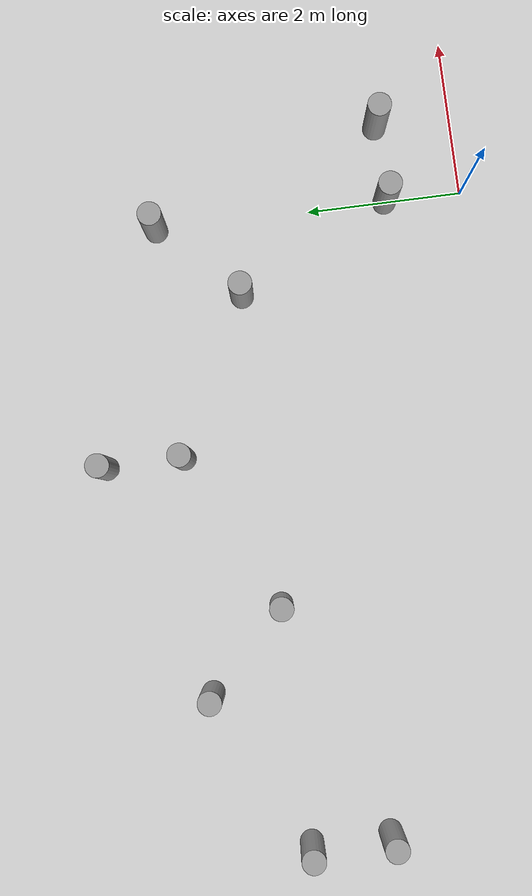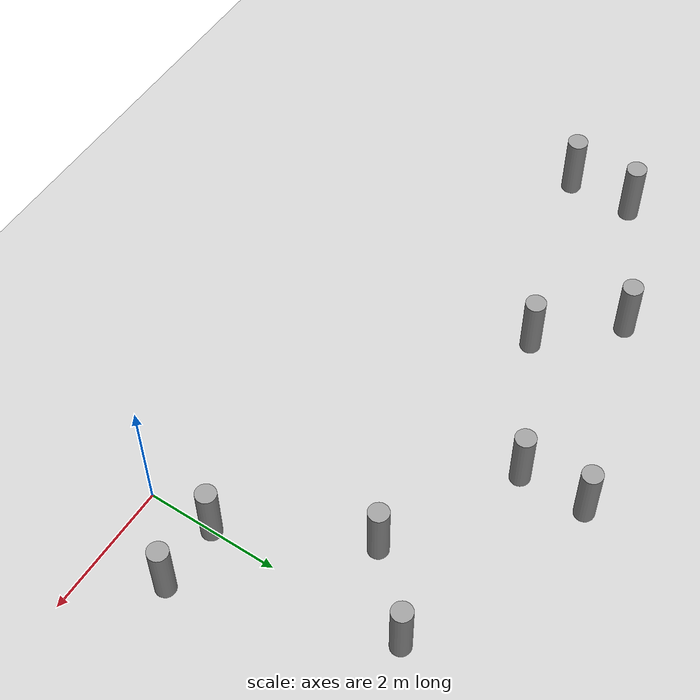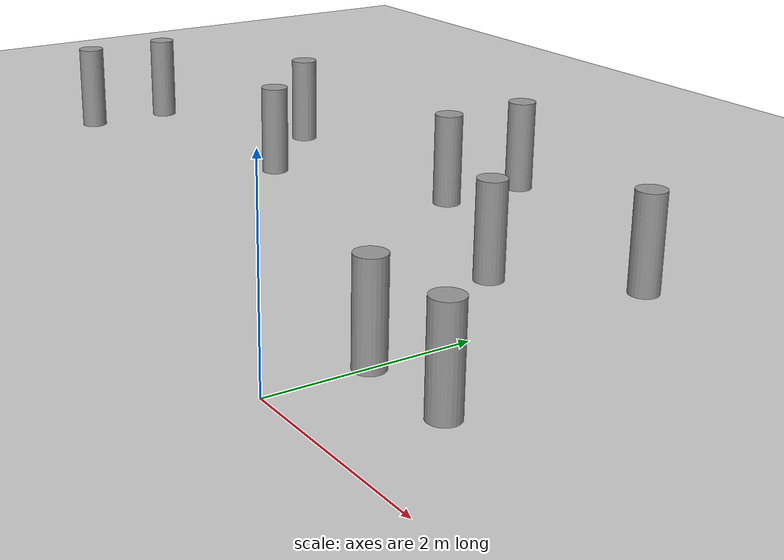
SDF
<sdf version="1.7">
 <world name="default">
  <light name="sun" type="directional">
   <pose>0 0 10 0 -0 0</pose>
   <diffuse>0.8 0.8 0.8 1</diffuse>
   <specular>0.2 0.2 0.2 1</specular>
   <attenuation>
    <range>1000</range>
    <constant>0.9</constant>
    <linear>0.01</linear>
    <quadratic>0.001</quadratic>
   </attenuation>
   <direction>-0.5 0.1 -0.9</direction>
   <spot><inner_angle>0</inner_angle><outer_angle>0</outer_angle><falloff>0</falloff></spot>
  </light>
  <model name="ground_plane">
   <static>1</static>
   <link name="link">
    <collision name="collision">
     <geometry><plane><normal>0 0 1</normal><size>100 100</size></plane></geometry>
     <surface>
      <contact><collide_bitmask>65535</collide_bitmask></contact>
      <friction><ode><mu>100</mu><mu2>50</mu2></ode></friction>
     </surface>
    </collision>
    <visual name="visual">
     <cast_shadows>0</cast_shadows>
     <geometry><plane><normal>0 0 1</normal><size>100 100</size></plane></geometry>
     <material>
      <script><uri>file://media/materials/scripts/gazebo.material</uri><name>Gazebo/Grey</name></script>
     </material>
    </visual>
   </link>
  </model>
  <gravity>0 0 -9.8</gravity>
  <magnetic_field>6e-06 2.3e-05 -4.2e-05</magnetic_field>
  <atmosphere type="adiabatic"/>
  <physics type="ode">
   <max_step_size>0.001</max_step_size>
   <real_time_factor>1</real_time_factor>
   <real_time_update_rate>1000</real_time_update_rate>
  </physics>
  <scene><ambient>0.4 0.4 0.4 1</ambient><background>0.7 0.7 0.7 1</background><shadows>1</shadows></scene>
  <spherical_coordinates>
   <surface_model>EARTH_WGS84</surface_model>
   <latitude_deg>0</latitude_deg>
   <longitude_deg>0</longitude_deg>
   <elevation>0</elevation>
   <heading_deg>0</heading_deg>
  </spherical_coordinates>
  <model name="custom.world">
   <link name="link_0">
    <inertial>
     <mass>1</mass>
     <inertia><ixx>0.145833</ixx><ixy>0</ixy><ixz>0</ixz><iyy>0.145833</iyy><iyz>0</iyz><izz>0.125</izz></inertia>
    </inertial>
    <pose>3.3 -2 0 0 -0 0</pose>
    <visual name="visual">
     <geometry><cylinder><radius>0.15</radius><length>1</length></cylinder></geometry>
     <material>
      <lighting>1</lighting>
      <script><uri>file://media/materials/scripts/gazebo.material</uri><name>Gazebo/Grey</name></script>
      <shader type="pixel"><normal_map>__default__</normal_map></shader>
      <ambient>0.3 0.3 0.3 1</ambient>
      <diffuse>0.7 0.7 0.7 1</diffuse>
      <specular>0.01 0.01 0.01 1</specular>
      <emissive>0 0 0 1</emissive>
     </material>
    </visual>
    <collision name="collision">
     <geometry><cylinder><radius>0.5</radius><length>1</length></cylinder></geometry>
     <surface>
      <friction>
       <ode><mu>1</mu><mu2>1</mu2><fdir1>0 0 0</fdir1><slip1>0</slip1><slip2>0</slip2></ode>
       <torsional>
        <coefficient>1</coefficient>
        <patch_radius>0</patch_radius>
        <surface_radius>0</surface_radius>
        <use_patch_radius>1</use_patch_radius>
        <ode><slip>0</slip></ode>
       </torsional>
      </friction>
      <bounce><restitution_coefficient>0</restitution_coefficient><threshold>1e+06</threshold></bounce>
      <contact>
       <collide_without_contact>0</collide_without_contact>
       <collide_without_contact_bitmask>1</collide_without_contact_bitmask>
       <collide_bitmask>1</collide_bitmask>
       <ode>
        <soft_cfm>0</soft_cfm>
        <soft_erp>0.2</soft_erp>
        <kp>1e+13</kp>
        <kd>1</kd>
        <max_vel>0.01</max_vel>
        <min_depth>0</min_depth>
       </ode>
       <bullet>
        <split_impulse>1</split_impulse>
        <split_impulse_penetration_threshold>-0.01</split_impulse_penetration_threshold>
        <soft_cfm>0</soft_cfm>
        <soft_erp>0.2</soft_erp>
        <kp>1e+13</kp>
        <kd>1</kd>
       </bullet>
      </contact>
     </surface>
    </collision>
   </link>
   <link name="link_1">
    <inertial>
     <mass>1</mass>
     <inertia><ixx>0.145833</ixx><ixy>0</ixy><ixz>0</ixz><iyy>0.145833</iyy><iyz>0</iyz><izz>0.125</izz></inertia>
    </inertial>
    <pose>4.3 -2 0 0 -0 0</pose>
    <visual name="visual">
     <geometry><cylinder><radius>0.15</radius><length>1</length></cylinder></geometry>
     <material>
      <lighting>1</lighting>
      <script><uri>file://media/materials/scripts/gazebo.material</uri><name>Gazebo/Grey</name></script>
      <shader type="pixel"><normal_map>__default__</normal_map></shader>
      <ambient>0.3 0.3 0.3 1</ambient>
      <diffuse>0.7 0.7 0.7 1</diffuse>
      <specular>0.01 0.01 0.01 1</specular>
      <emissive>0 0 0 1</emissive>
     </material>
    </visual>
    <collision name="collision">
     <geometry><cylinder><radius>0.5</radius><length>1</length></cylinder></geometry>
     <surface>
      <friction>
       <ode><mu>1</mu><mu2>1</mu2><fdir1>0 0 0</fdir1><slip1>0</slip1><slip2>0</slip2></ode>
       <torsional>
        <coefficient>1</coefficient>
        <patch_radius>0</patch_radius>
        <surface_radius>0</surface_radius>
        <use_patch_radius>1</use_patch_radius>
        <ode><slip>0</slip></ode>
       </torsional>
      </friction>
      <bounce><restitution_coefficient>0</restitution_coefficient><threshold>1e+06</threshold></bounce>
      <contact>
       <collide_without_contact>0</collide_without_contact>
       <collide_without_contact_bitmask>1</collide_without_contact_bitmask>
       <collide_bitmask>1</collide_bitmask>
       <ode>
        <soft_cfm>0</soft_cfm>
        <soft_erp>0.2</soft_erp>
        <kp>1e+13</kp>
        <kd>1</kd>
        <max_vel>0.01</max_vel>
        <min_depth>0</min_depth>
       </ode>
       <bullet>
        <split_impulse>1</split_impulse>
        <split_impulse_penetration_threshold>-0.01</split_impulse_penetration_threshold>
        <soft_cfm>0</soft_cfm>
        <soft_erp>0.2</soft_erp>
        <kp>1e+13</kp>
        <kd>1</kd>
       </bullet>
      </contact>
     </surface>
    </collision>
   </link>
   <link name="link_2">
    <inertial>
     <mass>1</mass>
     <inertia><ixx>0.145833</ixx><ixy>0</ixy><ixz>0</ixz><iyy>0.145833</iyy><iyz>0</iyz><izz>0.125</izz></inertia>
    </inertial>
    <pose>3.3 1 0 0 -0 0</pose>
    <visual name="visual">
     <geometry><cylinder><radius>0.15</radius><length>1</length></cylinder></geometry>
     <material>
      <lighting>1</lighting>
      <script><uri>file://media/materials/scripts/gazebo.material</uri><name>Gazebo/Grey</name></script>
      <shader type="pixel"><normal_map>__default__</normal_map></shader>
      <ambient>0.3 0.3 0.3 1</ambient>
      <diffuse>0.7 0.7 0.7 1</diffuse>
      <specular>0.01 0.01 0.01 1</specular>
      <emissive>0 0 0 1</emissive>
     </material>
    </visual>
    <collision name="collision">
     <geometry><cylinder><radius>0.5</radius><length>1</length></cylinder></geometry>
     <surface>
      <friction>
       <ode><mu>1</mu><mu2>1</mu2><fdir1>0 0 0</fdir1><slip1>0</slip1><slip2>0</slip2></ode>
       <torsional>
        <coefficient>1</coefficient>
        <patch_radius>0</patch_radius>
        <surface_radius>0</surface_radius>
        <use_patch_radius>1</use_patch_radius>
        <ode><slip>0</slip></ode>
       </torsional>
      </friction>
      <bounce><restitution_coefficient>0</restitution_coefficient><threshold>1e+06</threshold></bounce>
      <contact>
       <collide_without_contact>0</collide_without_contact>
       <collide_without_contact_bitmask>1</collide_without_contact_bitmask>
       <collide_bitmask>1</collide_bitmask>
       <ode>
        <soft_cfm>0</soft_cfm>
        <soft_erp>0.2</soft_erp>
        <kp>1e+13</kp>
        <kd>1</kd>
        <max_vel>0.01</max_vel>
        <min_depth>0</min_depth>
       </ode>
       <bullet>
        <split_impulse>1</split_impulse>
        <split_impulse_penetration_threshold>-0.01</split_impulse_penetration_threshold>
        <soft_cfm>0</soft_cfm>
        <soft_erp>0.2</soft_erp>
        <kp>1e+13</kp>
        <kd>1</kd>
       </bullet>
      </contact>
     </surface>
    </collision>
   </link>
   <link name="link_3">
    <inertial>
     <mass>1</mass>
     <inertia><ixx>0.145833</ixx><ixy>0</ixy><ixz>0</ixz><iyy>0.145833</iyy><iyz>0</iyz><izz>0.125</izz></inertia>
    </inertial>
    <pose>2.3 0 0 0 -0 0</pose>
    <visual name="visual">
     <geometry><cylinder><radius>0.15</radius><length>1</length></cylinder></geometry>
     <material>
      <lighting>1</lighting>
      <script><uri>file://media/materials/scripts/gazebo.material</uri><name>Gazebo/Grey</name></script>
      <shader type="pixel"><normal_map>__default__</normal_map></shader>
      <ambient>0.3 0.3 0.3 1</ambient>
      <diffuse>0.7 0.7 0.7 1</diffuse>
      <specular>0.01 0.01 0.01 1</specular>
      <emissive>0 0 0 1</emissive>
     </material>
    </visual>
    <collision name="collision">
     <geometry><cylinder><radius>0.5</radius><length>1</length></cylinder></geometry>
     <surface>
      <friction>
       <ode><mu>1</mu><mu2>1</mu2><fdir1>0 0 0</fdir1><slip1>0</slip1><slip2>0</slip2></ode>
       <torsional>
        <coefficient>1</coefficient>
        <patch_radius>0</patch_radius>
        <surface_radius>0</surface_radius>
        <use_patch_radius>1</use_patch_radius>
        <ode><slip>0</slip></ode>
       </torsional>
      </friction>
      <bounce><restitution_coefficient>0</restitution_coefficient><threshold>1e+06</threshold></bounce>
      <contact>
       <collide_without_contact>0</collide_without_contact>
       <collide_without_contact_bitmask>1</collide_without_contact_bitmask>
       <collide_bitmask>1</collide_bitmask>
       <ode>
        <soft_cfm>0</soft_cfm>
        <soft_erp>0.2</soft_erp>
        <kp>1e+13</kp>
        <kd>1</kd>
        <max_vel>0.01</max_vel>
        <min_depth>0</min_depth>
       </ode>
       <bullet>
        <split_impulse>1</split_impulse>
        <split_impulse_penetration_threshold>-0.01</split_impulse_penetration_threshold>
        <soft_cfm>0</soft_cfm>
        <soft_erp>0.2</soft_erp>
        <kp>1e+13</kp>
        <kd>1</kd>
       </bullet>
      </contact>
     </surface>
    </collision>
   </link>
   <link name="link_4">
    <inertial>
     <mass>1</mass>
     <inertia><ixx>0.145833</ixx><ixy>0</ixy><ixz>0</ixz><iyy>0.145833</iyy><iyz>0</iyz><izz>0.125</izz></inertia>
    </inertial>
    <pose>0.3 1 0 0 -0 0</pose>
    <visual name="visual">
     <geometry><cylinder><radius>0.15</radius><length>1</length></cylinder></geometry>
     <material>
      <lighting>1</lighting>
      <script><uri>file://media/materials/scripts/gazebo.material</uri><name>Gazebo/Grey</name></script>
      <shader type="pixel"><normal_map>__default__</normal_map></shader>
      <ambient>0.3 0.3 0.3 1</ambient>
      <diffuse>0.7 0.7 0.7 1</diffuse>
      <specular>0.01 0.01 0.01 1</specular>
      <emissive>0 0 0 1</emissive>
     </material>
    </visual>
    <collision name="collision">
     <geometry><cylinder><radius>0.5</radius><length>1</length></cylinder></geometry>
     <surface>
      <friction>
       <ode><mu>1</mu><mu2>1</mu2><fdir1>0 0 0</fdir1><slip1>0</slip1><slip2>0</slip2></ode>
       <torsional>
        <coefficient>1</coefficient>
        <patch_radius>0</patch_radius>
        <surface_radius>0</surface_radius>
        <use_patch_radius>1</use_patch_radius>
        <ode><slip>0</slip></ode>
       </torsional>
      </friction>
      <bounce><restitution_coefficient>0</restitution_coefficient><threshold>1e+06</threshold></bounce>
      <contact>
       <collide_without_contact>0</collide_without_contact>
       <collide_without_contact_bitmask>1</collide_without_contact_bitmask>
       <collide_bitmask>1</collide_bitmask>
       <ode>
        <soft_cfm>0</soft_cfm>
        <soft_erp>0.2</soft_erp>
        <kp>1e+13</kp>
        <kd>1</kd>
        <max_vel>0.01</max_vel>
        <min_depth>0</min_depth>
       </ode>
       <bullet>
        <split_impulse>1</split_impulse>
        <split_impulse_penetration_threshold>-0.01</split_impulse_penetration_threshold>
        <soft_cfm>0</soft_cfm>
        <soft_erp>0.2</soft_erp>
        <kp>1e+13</kp>
        <kd>1</kd>
       </bullet>
      </contact>
     </surface>
    </collision>
   </link>
   <link name="link_5">
    <inertial>
     <mass>1</mass>
     <inertia><ixx>0.145833</ixx><ixy>0</ixy><ixz>0</ixz><iyy>0.145833</iyy><iyz>0</iyz><izz>0.125</izz></inertia>
    </inertial>
    <pose>0.3 2 0 0 -0 0</pose>
    <visual name="visual">
     <geometry><cylinder><radius>0.15</radius><length>1</length></cylinder></geometry>
     <material>
      <lighting>1</lighting>
      <script><uri>file://media/materials/scripts/gazebo.material</uri><name>Gazebo/Grey</name></script>
      <shader type="pixel"><normal_map>__default__</normal_map></shader>
      <ambient>0.3 0.3 0.3 1</ambient>
      <diffuse>0.7 0.7 0.7 1</diffuse>
      <specular>0.01 0.01 0.01 1</specular>
      <emissive>0 0 0 1</emissive>
     </material>
    </visual>
    <collision name="collision">
     <geometry><cylinder><radius>0.5</radius><length>1</length></cylinder></geometry>
     <surface>
      <friction>
       <ode><mu>1</mu><mu2>1</mu2><fdir1>0 0 0</fdir1><slip1>0</slip1><slip2>0</slip2></ode>
       <torsional>
        <coefficient>1</coefficient>
        <patch_radius>0</patch_radius>
        <surface_radius>0</surface_radius>
        <use_patch_radius>1</use_patch_radius>
        <ode><slip>0</slip></ode>
       </torsional>
      </friction>
      <bounce><restitution_coefficient>0</restitution_coefficient><threshold>1e+06</threshold></bounce>
      <contact>
       <collide_without_contact>0</collide_without_contact>
       <collide_without_contact_bitmask>1</collide_without_contact_bitmask>
       <collide_bitmask>1</collide_bitmask>
       <ode>
        <soft_cfm>0</soft_cfm>
        <soft_erp>0.2</soft_erp>
        <kp>1e+13</kp>
        <kd>1</kd>
        <max_vel>0.01</max_vel>
        <min_depth>0</min_depth>
       </ode>
       <bullet>
        <split_impulse>1</split_impulse>
        <split_impulse_penetration_threshold>-0.01</split_impulse_penetration_threshold>
        <soft_cfm>0</soft_cfm>
        <soft_erp>0.2</soft_erp>
        <kp>1e+13</kp>
        <kd>1</kd>
       </bullet>
      </contact>
     </surface>
    </collision>
   </link>
   <link name="link_6">
    <inertial>
     <mass>1</mass>
     <inertia><ixx>0.145833</ixx><ixy>0</ixy><ixz>0</ixz><iyy>0.145833</iyy><iyz>0</iyz><izz>0.125</izz></inertia>
    </inertial>
    <pose>-1.7 0 0 0 -0 0</pose>
    <visual name="visual">
     <geometry><cylinder><radius>0.15</radius><length>1</length></cylinder></geometry>
     <material>
      <lighting>1</lighting>
      <script><uri>file://media/materials/scripts/gazebo.material</uri><name>Gazebo/Grey</name></script>
      <shader type="pixel"><normal_map>__default__</normal_map></shader>
      <ambient>0.3 0.3 0.3 1</ambient>
      <diffuse>0.7 0.7 0.7 1</diffuse>
      <specular>0.01 0.01 0.01 1</specular>
      <emissive>0 0 0 1</emissive>
     </material>
    </visual>
    <collision name="collision">
     <geometry><cylinder><radius>0.5</radius><length>1</length></cylinder></geometry>
     <surface>
      <friction>
       <ode><mu>1</mu><mu2>1</mu2><fdir1>0 0 0</fdir1><slip1>0</slip1><slip2>0</slip2></ode>
       <torsional>
        <coefficient>1</coefficient>
        <patch_radius>0</patch_radius>
        <surface_radius>0</surface_radius>
        <use_patch_radius>1</use_patch_radius>
        <ode><slip>0</slip></ode>
       </torsional>
      </friction>
      <bounce><restitution_coefficient>0</restitution_coefficient><threshold>1e+06</threshold></bounce>
      <contact>
       <collide_without_contact>0</collide_without_contact>
       <collide_without_contact_bitmask>1</collide_without_contact_bitmask>
       <collide_bitmask>1</collide_bitmask>
       <ode>
        <soft_cfm>0</soft_cfm>
        <soft_erp>0.2</soft_erp>
        <kp>1e+13</kp>
        <kd>1</kd>
        <max_vel>0.01</max_vel>
        <min_depth>0</min_depth>
       </ode>
       <bullet>
        <split_impulse>1</split_impulse>
        <split_impulse_penetration_threshold>-0.01</split_impulse_penetration_threshold>
        <soft_cfm>0</soft_cfm>
        <soft_erp>0.2</soft_erp>
        <kp>1e+13</kp>
        <kd>1</kd>
       </bullet>
      </contact>
     </surface>
    </collision>
   </link>
   <link name="link_7">
    <inertial>
     <mass>1</mass>
     <inertia><ixx>0.145833</ixx><ixy>0</ixy><ixz>0</ixz><iyy>0.145833</iyy><iyz>0</iyz><izz>0.125</izz></inertia>
    </inertial>
    <pose>-2.7 1 0 0 -0 0</pose>
    <visual name="visual">
     <geometry><cylinder><radius>0.15</radius><length>1</length></cylinder></geometry>
     <material>
      <lighting>1</lighting>
      <script><uri>file://media/materials/scripts/gazebo.material</uri><name>Gazebo/Grey</name></script>
      <shader type="pixel"><normal_map>__default__</normal_map></shader>
      <ambient>0.3 0.3 0.3 1</ambient>
      <diffuse>0.7 0.7 0.7 1</diffuse>
      <specular>0.01 0.01 0.01 1</specular>
      <emissive>0 0 0 1</emissive>
     </material>
    </visual>
    <collision name="collision">
     <geometry><cylinder><radius>0.5</radius><length>1</length></cylinder></geometry>
     <surface>
      <friction>
       <ode><mu>1</mu><mu2>1</mu2><fdir1>0 0 0</fdir1><slip1>0</slip1><slip2>0</slip2></ode>
       <torsional>
        <coefficient>1</coefficient>
        <patch_radius>0</patch_radius>
        <surface_radius>0</surface_radius>
        <use_patch_radius>1</use_patch_radius>
        <ode><slip>0</slip></ode>
       </torsional>
      </friction>
      <bounce><restitution_coefficient>0</restitution_coefficient><threshold>1e+06</threshold></bounce>
      <contact>
       <collide_without_contact>0</collide_without_contact>
       <collide_without_contact_bitmask>1</collide_without_contact_bitmask>
       <collide_bitmask>1</collide_bitmask>
       <ode>
        <soft_cfm>0</soft_cfm>
        <soft_erp>0.2</soft_erp>
        <kp>1e+13</kp>
        <kd>1</kd>
        <max_vel>0.01</max_vel>
        <min_depth>0</min_depth>
       </ode>
       <bullet>
        <split_impulse>1</split_impulse>
        <split_impulse_penetration_threshold>-0.01</split_impulse_penetration_threshold>
        <soft_cfm>0</soft_cfm>
        <soft_erp>0.2</soft_erp>
        <kp>1e+13</kp>
        <kd>1</kd>
       </bullet>
      </contact>
     </surface>
    </collision>
   </link>
   <link name="link_8">
    <inertial>
     <mass>1</mass>
     <inertia><ixx>0.145833</ixx><ixy>0</ixy><ixz>0</ixz><iyy>0.145833</iyy><iyz>0</iyz><izz>0.125</izz></inertia>
    </inertial>
    <pose>-4.7 0 0 0 -0 0</pose>
    <visual name="visual">
     <geometry><cylinder><radius>0.15</radius><length>1</length></cylinder></geometry>
     <material>
      <lighting>1</lighting>
      <script><uri>file://media/materials/scripts/gazebo.material</uri><name>Gazebo/Grey</name></script>
      <shader type="pixel"><normal_map>__default__</normal_map></shader>
      <ambient>0.3 0.3 0.3 1</ambient>
      <diffuse>0.7 0.7 0.7 1</diffuse>
      <specular>0.01 0.01 0.01 1</specular>
      <emissive>0 0 0 1</emissive>
     </material>
    </visual>
    <collision name="collision">
     <geometry><cylinder><radius>0.5</radius><length>1</length></cylinder></geometry>
     <surface>
      <friction>
       <ode><mu>1</mu><mu2>1</mu2><fdir1>0 0 0</fdir1><slip1>0</slip1><slip2>0</slip2></ode>
       <torsional>
        <coefficient>1</coefficient>
        <patch_radius>0</patch_radius>
        <surface_radius>0</surface_radius>
        <use_patch_radius>1</use_patch_radius>
        <ode><slip>0</slip></ode>
       </torsional>
      </friction>
      <bounce><restitution_coefficient>0</restitution_coefficient><threshold>1e+06</threshold></bounce>
      <contact>
       <collide_without_contact>0</collide_without_contact>
       <collide_without_contact_bitmask>1</collide_without_contact_bitmask>
       <collide_bitmask>1</collide_bitmask>
       <ode>
        <soft_cfm>0</soft_cfm>
        <soft_erp>0.2</soft_erp>
        <kp>1e+13</kp>
        <kd>1</kd>
        <max_vel>0.01</max_vel>
        <min_depth>0</min_depth>
       </ode>
       <bullet>
        <split_impulse>1</split_impulse>
        <split_impulse_penetration_threshold>-0.01</split_impulse_penetration_threshold>
        <soft_cfm>0</soft_cfm>
        <soft_erp>0.2</soft_erp>
        <kp>1e+13</kp>
        <kd>1</kd>
       </bullet>
      </contact>
     </surface>
    </collision>
   </link>
   <link name="link_9">
    <inertial>
     <mass>1</mass>
     <inertia><ixx>0.145833</ixx><ixy>0</ixy><ixz>0</ixz><iyy>0.145833</iyy><iyz>0</iyz><izz>0.125</izz></inertia>
    </inertial>
    <pose>-4.7 -1 0 0 -0 0</pose>
    <visual name="visual">
     <geometry><cylinder><radius>0.15</radius><length>1</length></cylinder></geometry>
     <material>
      <lighting>1</lighting>
      <script><uri>file://media/materials/scripts/gazebo.material</uri><name>Gazebo/Grey</name></script>
      <shader type="pixel"><normal_map>__default__</normal_map></shader>
      <ambient>0.3 0.3 0.3 1</ambient>
      <diffuse>0.7 0.7 0.7 1</diffuse>
      <specular>0.01 0.01 0.01 1</specular>
      <emissive>0 0 0 1</emissive>
     </material>
    </visual>
    <collision name="collision">
     <geometry><cylinder><radius>0.5</radius><length>1</length></cylinder></geometry>
     <surface>
      <friction>
       <ode><mu>1</mu><mu2>1</mu2><fdir1>0 0 0</fdir1><slip1>0</slip1><slip2>0</slip2></ode>
       <torsional>
        <coefficient>1</coefficient>
        <patch_radius>0</patch_radius>
        <surface_radius>0</surface_radius>
        <use_patch_radius>1</use_patch_radius>
        <ode><slip>0</slip></ode>
       </torsional>
      </friction>
      <bounce><restitution_coefficient>0</restitution_coefficient><threshold>1e+06</threshold></bounce>
      <contact>
       <collide_without_contact>0</collide_without_contact>
       <collide_without_contact_bitmask>1</collide_without_contact_bitmask>
       <collide_bitmask>1</collide_bitmask>
       <ode>
        <soft_cfm>0</soft_cfm>
        <soft_erp>0.2</soft_erp>
        <kp>1e+13</kp>
        <kd>1</kd>
        <max_vel>0.01</max_vel>
        <min_depth>0</min_depth>
       </ode>
       <bullet>
        <split_impulse>1</split_impulse>
        <split_impulse_penetration_threshold>-0.01</split_impulse_penetration_threshold>
        <soft_cfm>0</soft_cfm>
        <soft_erp>0.2</soft_erp>
        <kp>1e+13</kp>
        <kd>1</kd>
       </bullet>
      </contact>
     </surface>
    </collision>
   </link>
   <static>0</static>
   <pose>-3.3 3 0.5 0 -0 0</pose>
  </model>
 </world>
</sdf>
